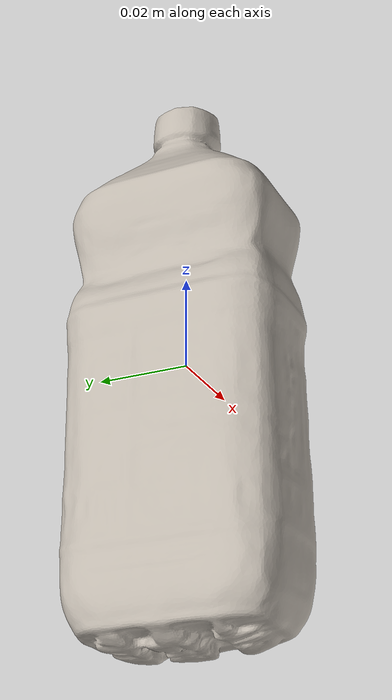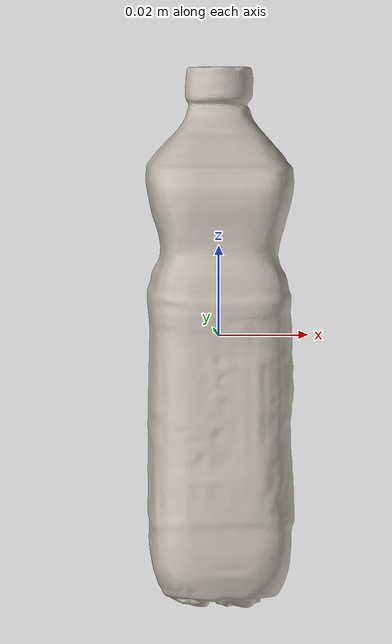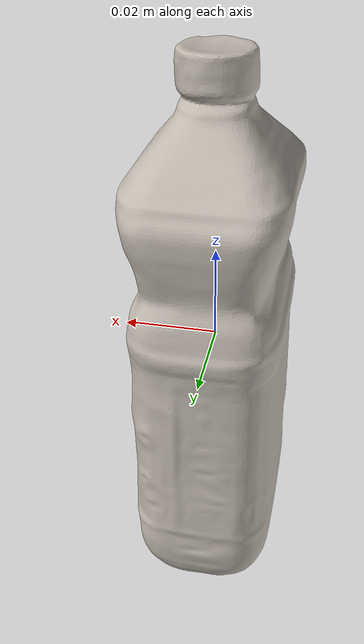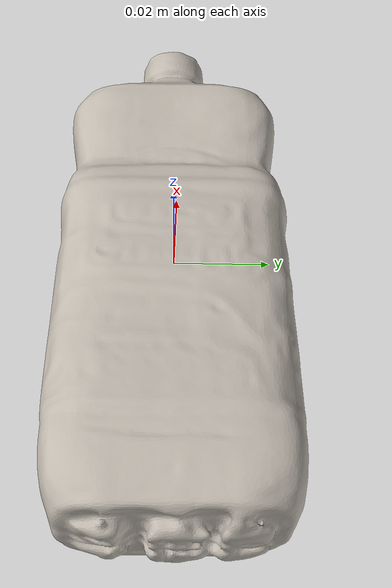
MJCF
<?xml version='1.0' encoding='utf-8'?>
<mujoco model="canola_oil_2">
  <asset>
    <texture file="ceramic.png" name="tex-canola_oil_2" type="2d" />
    <material name="canola_oil_2" reflectance="0.5" texrepeat="1 1" texture="tex-canola_oil_2" texuniform="false" />
    <mesh file="visual/model_normalized_0.obj" name="model_normalized_0_vis" scale="0.12000000000000002 0.12000000000000002 0.12000000000000002" refquat="1.0 0.0 0.0 0.0" />
    <mesh file="collision/model_normalized_collision_13.obj" name="model_normalized_collision_13._coll" scale="0.12000000000000002 0.12000000000000002 0.12000000000000002" refquat="1.0 0.0 0.0 0.0" />
    <mesh file="collision/model_normalized_collision_15.obj" name="model_normalized_collision_15._coll" scale="0.12000000000000002 0.12000000000000002 0.12000000000000002" refquat="1.0 0.0 0.0 0.0" />
    <mesh file="collision/model_normalized_collision_10.obj" name="model_normalized_collision_10._coll" scale="0.12000000000000002 0.12000000000000002 0.12000000000000002" refquat="1.0 0.0 0.0 0.0" />
    <mesh file="collision/model_normalized_collision_26.obj" name="model_normalized_collision_26._coll" scale="0.12000000000000002 0.12000000000000002 0.12000000000000002" refquat="1.0 0.0 0.0 0.0" />
    <mesh file="collision/model_normalized_collision_25.obj" name="model_normalized_collision_25._coll" scale="0.12000000000000002 0.12000000000000002 0.12000000000000002" refquat="1.0 0.0 0.0 0.0" />
    <mesh file="collision/model_normalized_collision_5.obj" name="model_normalized_collision_5._coll" scale="0.12000000000000002 0.12000000000000002 0.12000000000000002" refquat="1.0 0.0 0.0 0.0" />
    <mesh file="collision/model_normalized_collision_31.obj" name="model_normalized_collision_31._coll" scale="0.12000000000000002 0.12000000000000002 0.12000000000000002" refquat="1.0 0.0 0.0 0.0" />
    <mesh file="collision/model_normalized_collision_3.obj" name="model_normalized_collision_3._coll" scale="0.12000000000000002 0.12000000000000002 0.12000000000000002" refquat="1.0 0.0 0.0 0.0" />
    <mesh file="collision/model_normalized_collision_14.obj" name="model_normalized_collision_14._coll" scale="0.12000000000000002 0.12000000000000002 0.12000000000000002" refquat="1.0 0.0 0.0 0.0" />
    <mesh file="collision/model_normalized_collision_28.obj" name="model_normalized_collision_28._coll" scale="0.12000000000000002 0.12000000000000002 0.12000000000000002" refquat="1.0 0.0 0.0 0.0" />
    <mesh file="collision/model_normalized_collision_11.obj" name="model_normalized_collision_11._coll" scale="0.12000000000000002 0.12000000000000002 0.12000000000000002" refquat="1.0 0.0 0.0 0.0" />
    <mesh file="collision/model_normalized_collision_29.obj" name="model_normalized_collision_29._coll" scale="0.12000000000000002 0.12000000000000002 0.12000000000000002" refquat="1.0 0.0 0.0 0.0" />
    <mesh file="collision/model_normalized_collision_24.obj" name="model_normalized_collision_24._coll" scale="0.12000000000000002 0.12000000000000002 0.12000000000000002" refquat="1.0 0.0 0.0 0.0" />
    <mesh file="collision/model_normalized_collision_1.obj" name="model_normalized_collision_1._coll" scale="0.12000000000000002 0.12000000000000002 0.12000000000000002" refquat="1.0 0.0 0.0 0.0" />
    <mesh file="collision/model_normalized_collision_0.obj" name="model_normalized_collision_0._coll" scale="0.12000000000000002 0.12000000000000002 0.12000000000000002" refquat="1.0 0.0 0.0 0.0" />
    <mesh file="collision/model_normalized_collision_27.obj" name="model_normalized_collision_27._coll" scale="0.12000000000000002 0.12000000000000002 0.12000000000000002" refquat="1.0 0.0 0.0 0.0" />
    <mesh file="collision/model_normalized_collision_9.obj" name="model_normalized_collision_9._coll" scale="0.12000000000000002 0.12000000000000002 0.12000000000000002" refquat="1.0 0.0 0.0 0.0" />
    <mesh file="collision/model_normalized_collision_19.obj" name="model_normalized_collision_19._coll" scale="0.12000000000000002 0.12000000000000002 0.12000000000000002" refquat="1.0 0.0 0.0 0.0" />
    <mesh file="collision/model_normalized_collision_21.obj" name="model_normalized_collision_21._coll" scale="0.12000000000000002 0.12000000000000002 0.12000000000000002" refquat="1.0 0.0 0.0 0.0" />
    <mesh file="collision/model_normalized_collision_30.obj" name="model_normalized_collision_30._coll" scale="0.12000000000000002 0.12000000000000002 0.12000000000000002" refquat="1.0 0.0 0.0 0.0" />
    <mesh file="collision/model_normalized_collision_20.obj" name="model_normalized_collision_20._coll" scale="0.12000000000000002 0.12000000000000002 0.12000000000000002" refquat="1.0 0.0 0.0 0.0" />
    <mesh file="collision/model_normalized_collision_2.obj" name="model_normalized_collision_2._coll" scale="0.12000000000000002 0.12000000000000002 0.12000000000000002" refquat="1.0 0.0 0.0 0.0" />
    <mesh file="collision/model_normalized_collision_7.obj" name="model_normalized_collision_7._coll" scale="0.12000000000000002 0.12000000000000002 0.12000000000000002" refquat="1.0 0.0 0.0 0.0" />
    <mesh file="collision/model_normalized_collision_22.obj" name="model_normalized_collision_22._coll" scale="0.12000000000000002 0.12000000000000002 0.12000000000000002" refquat="1.0 0.0 0.0 0.0" />
    <mesh file="collision/model_normalized_collision_16.obj" name="model_normalized_collision_16._coll" scale="0.12000000000000002 0.12000000000000002 0.12000000000000002" refquat="1.0 0.0 0.0 0.0" />
    <mesh file="collision/model_normalized_collision_8.obj" name="model_normalized_collision_8._coll" scale="0.12000000000000002 0.12000000000000002 0.12000000000000002" refquat="1.0 0.0 0.0 0.0" />
    <mesh file="collision/model_normalized_collision_6.obj" name="model_normalized_collision_6._coll" scale="0.12000000000000002 0.12000000000000002 0.12000000000000002" refquat="1.0 0.0 0.0 0.0" />
    <mesh file="collision/model_normalized_collision_18.obj" name="model_normalized_collision_18._coll" scale="0.12000000000000002 0.12000000000000002 0.12000000000000002" refquat="1.0 0.0 0.0 0.0" />
    <mesh file="collision/model_normalized_collision_17.obj" name="model_normalized_collision_17._coll" scale="0.12000000000000002 0.12000000000000002 0.12000000000000002" refquat="1.0 0.0 0.0 0.0" />
    <mesh file="collision/model_normalized_collision_12.obj" name="model_normalized_collision_12._coll" scale="0.12000000000000002 0.12000000000000002 0.12000000000000002" refquat="1.0 0.0 0.0 0.0" />
    <mesh file="collision/model_normalized_collision_4.obj" name="model_normalized_collision_4._coll" scale="0.12000000000000002 0.12000000000000002 0.12000000000000002" refquat="1.0 0.0 0.0 0.0" />
    <mesh file="collision/model_normalized_collision_23.obj" name="model_normalized_collision_23._coll" scale="0.12000000000000002 0.12000000000000002 0.12000000000000002" refquat="1.0 0.0 0.0 0.0" />
    <texture type="2d" name="66270e29be43_canola_oil__3d_asse_texture_kd" file="visual/66270e29be43_canola_oil__3d_asse_texture_kd.png" />
    <material name="Material_0" texture="66270e29be43_canola_oil__3d_asse_texture_kd" specular="0.5" shininess="0.5" />
  </asset>
  <default>
    <default class="region">
      <geom group="1" conaffinity="0" contype="0" rgba="0 1 0 0" />
    </default>
  </default>
  <worldbody>
    <body>
      <body name="object">
        <geom solimp="0.998 0.998 0.001" solref="0.001 1" density="100" friction="0.95 0.3 0.1" type="mesh" mesh="model_normalized_0_vis" conaffinity="0" contype="0" group="1" material="Material_0" />
        <geom solimp="0.998 0.998 0.001" solref="0.001 1" density="100" friction="0.95 0.3 0.1" type="mesh" mesh="model_normalized_collision_13._coll" group="0" rgba="0.8 0.8 0.8 0.0" />
        <geom solimp="0.998 0.998 0.001" solref="0.001 1" density="100" friction="0.95 0.3 0.1" type="mesh" mesh="model_normalized_collision_15._coll" group="0" rgba="0.8 0.8 0.8 0.0" />
        <geom solimp="0.998 0.998 0.001" solref="0.001 1" density="100" friction="0.95 0.3 0.1" type="mesh" mesh="model_normalized_collision_10._coll" group="0" rgba="0.8 0.8 0.8 0.0" />
        <geom solimp="0.998 0.998 0.001" solref="0.001 1" density="100" friction="0.95 0.3 0.1" type="mesh" mesh="model_normalized_collision_26._coll" group="0" rgba="0.8 0.8 0.8 0.0" />
        <geom solimp="0.998 0.998 0.001" solref="0.001 1" density="100" friction="0.95 0.3 0.1" type="mesh" mesh="model_normalized_collision_25._coll" group="0" rgba="0.8 0.8 0.8 0.0" />
        <geom solimp="0.998 0.998 0.001" solref="0.001 1" density="100" friction="0.95 0.3 0.1" type="mesh" mesh="model_normalized_collision_5._coll" group="0" rgba="0.8 0.8 0.8 0.0" />
        <geom solimp="0.998 0.998 0.001" solref="0.001 1" density="100" friction="0.95 0.3 0.1" type="mesh" mesh="model_normalized_collision_31._coll" group="0" rgba="0.8 0.8 0.8 0.0" />
        <geom solimp="0.998 0.998 0.001" solref="0.001 1" density="100" friction="0.95 0.3 0.1" type="mesh" mesh="model_normalized_collision_3._coll" group="0" rgba="0.8 0.8 0.8 0.0" />
        <geom solimp="0.998 0.998 0.001" solref="0.001 1" density="100" friction="0.95 0.3 0.1" type="mesh" mesh="model_normalized_collision_14._coll" group="0" rgba="0.8 0.8 0.8 0.0" />
        <geom solimp="0.998 0.998 0.001" solref="0.001 1" density="100" friction="0.95 0.3 0.1" type="mesh" mesh="model_normalized_collision_28._coll" group="0" rgba="0.8 0.8 0.8 0.0" />
        <geom solimp="0.998 0.998 0.001" solref="0.001 1" density="100" friction="0.95 0.3 0.1" type="mesh" mesh="model_normalized_collision_11._coll" group="0" rgba="0.8 0.8 0.8 0.0" />
        <geom solimp="0.998 0.998 0.001" solref="0.001 1" density="100" friction="0.95 0.3 0.1" type="mesh" mesh="model_normalized_collision_29._coll" group="0" rgba="0.8 0.8 0.8 0.0" />
        <geom solimp="0.998 0.998 0.001" solref="0.001 1" density="100" friction="0.95 0.3 0.1" type="mesh" mesh="model_normalized_collision_24._coll" group="0" rgba="0.8 0.8 0.8 0.0" />
        <geom solimp="0.998 0.998 0.001" solref="0.001 1" density="100" friction="0.95 0.3 0.1" type="mesh" mesh="model_normalized_collision_1._coll" group="0" rgba="0.8 0.8 0.8 0.0" />
        <geom solimp="0.998 0.998 0.001" solref="0.001 1" density="100" friction="0.95 0.3 0.1" type="mesh" mesh="model_normalized_collision_0._coll" group="0" rgba="0.8 0.8 0.8 0.0" />
        <geom solimp="0.998 0.998 0.001" solref="0.001 1" density="100" friction="0.95 0.3 0.1" type="mesh" mesh="model_normalized_collision_27._coll" group="0" rgba="0.8 0.8 0.8 0.0" />
        <geom solimp="0.998 0.998 0.001" solref="0.001 1" density="100" friction="0.95 0.3 0.1" type="mesh" mesh="model_normalized_collision_9._coll" group="0" rgba="0.8 0.8 0.8 0.0" />
        <geom solimp="0.998 0.998 0.001" solref="0.001 1" density="100" friction="0.95 0.3 0.1" type="mesh" mesh="model_normalized_collision_19._coll" group="0" rgba="0.8 0.8 0.8 0.0" />
        <geom solimp="0.998 0.998 0.001" solref="0.001 1" density="100" friction="0.95 0.3 0.1" type="mesh" mesh="model_normalized_collision_21._coll" group="0" rgba="0.8 0.8 0.8 0.0" />
        <geom solimp="0.998 0.998 0.001" solref="0.001 1" density="100" friction="0.95 0.3 0.1" type="mesh" mesh="model_normalized_collision_30._coll" group="0" rgba="0.8 0.8 0.8 0.0" />
        <geom solimp="0.998 0.998 0.001" solref="0.001 1" density="100" friction="0.95 0.3 0.1" type="mesh" mesh="model_normalized_collision_20._coll" group="0" rgba="0.8 0.8 0.8 0.0" />
        <geom solimp="0.998 0.998 0.001" solref="0.001 1" density="100" friction="0.95 0.3 0.1" type="mesh" mesh="model_normalized_collision_2._coll" group="0" rgba="0.8 0.8 0.8 0.0" />
        <geom solimp="0.998 0.998 0.001" solref="0.001 1" density="100" friction="0.95 0.3 0.1" type="mesh" mesh="model_normalized_collision_7._coll" group="0" rgba="0.8 0.8 0.8 0.0" />
        <geom solimp="0.998 0.998 0.001" solref="0.001 1" density="100" friction="0.95 0.3 0.1" type="mesh" mesh="model_normalized_collision_22._coll" group="0" rgba="0.8 0.8 0.8 0.0" />
        <geom solimp="0.998 0.998 0.001" solref="0.001 1" density="100" friction="0.95 0.3 0.1" type="mesh" mesh="model_normalized_collision_16._coll" group="0" rgba="0.8 0.8 0.8 0.0" />
        <geom solimp="0.998 0.998 0.001" solref="0.001 1" density="100" friction="0.95 0.3 0.1" type="mesh" mesh="model_normalized_collision_8._coll" group="0" rgba="0.8 0.8 0.8 0.0" />
        <geom solimp="0.998 0.998 0.001" solref="0.001 1" density="100" friction="0.95 0.3 0.1" type="mesh" mesh="model_normalized_collision_6._coll" group="0" rgba="0.8 0.8 0.8 0.0" />
        <geom solimp="0.998 0.998 0.001" solref="0.001 1" density="100" friction="0.95 0.3 0.1" type="mesh" mesh="model_normalized_collision_18._coll" group="0" rgba="0.8 0.8 0.8 0.0" />
        <geom solimp="0.998 0.998 0.001" solref="0.001 1" density="100" friction="0.95 0.3 0.1" type="mesh" mesh="model_normalized_collision_17._coll" group="0" rgba="0.8 0.8 0.8 0.0" />
        <geom solimp="0.998 0.998 0.001" solref="0.001 1" density="100" friction="0.95 0.3 0.1" type="mesh" mesh="model_normalized_collision_12._coll" group="0" rgba="0.8 0.8 0.8 0.0" />
        <geom solimp="0.998 0.998 0.001" solref="0.001 1" density="100" friction="0.95 0.3 0.1" type="mesh" mesh="model_normalized_collision_4._coll" group="0" rgba="0.8 0.8 0.8 0.0" />
        <geom solimp="0.998 0.998 0.001" solref="0.001 1" density="100" friction="0.95 0.3 0.1" type="mesh" mesh="model_normalized_collision_23._coll" group="0" rgba="0.8 0.8 0.8 0.0" />
        <geom class="region" name="reg_bbox" type="box" pos="0.00022375560000000076 0.000315277200000001 1.1999999952050366e-09" size="0.017496482400000003 0.024860731200000007 0.06090908880000002" />
      </body>
    <site rgba="0 0 0 0" size="0.005" pos="0 0 -0.060909088" name="bottom_site" /><site rgba="0 0 0 0" size="0.005" pos="0 0 0.06090909" name="top_site" /><site rgba="0 0 0 0" size="0.005" pos="0.025176008 0.025176008 0" name="horizontal_radius_site" /></body>
  </worldbody>
</mujoco>
